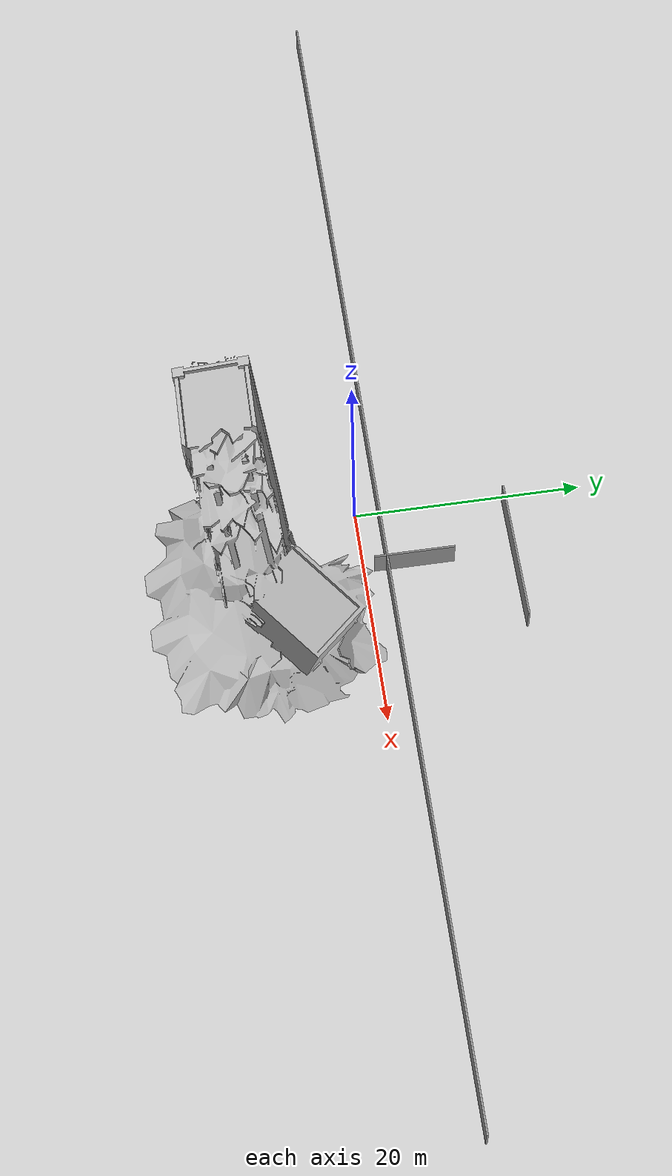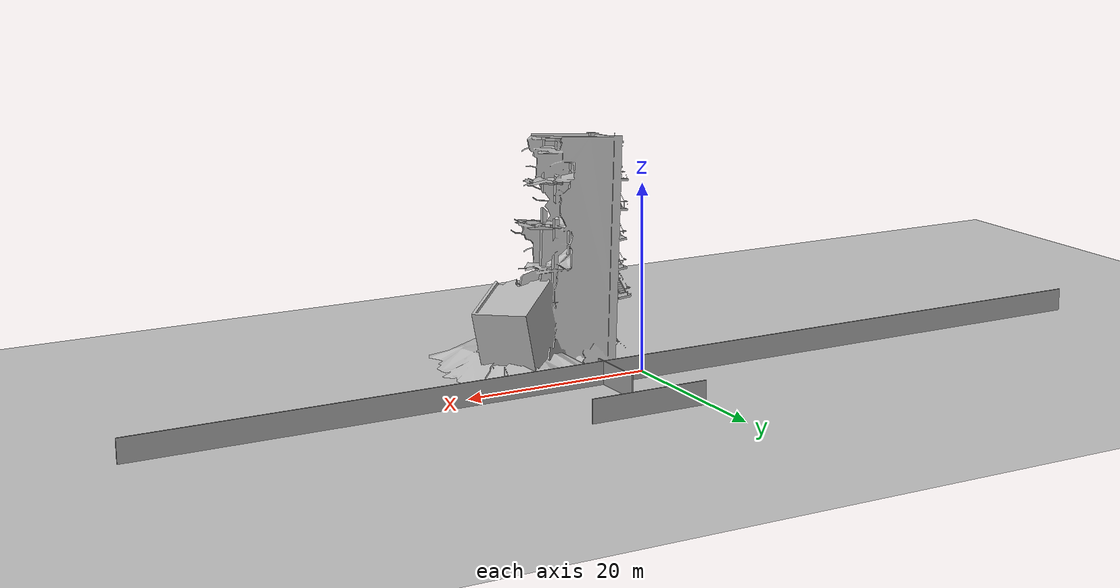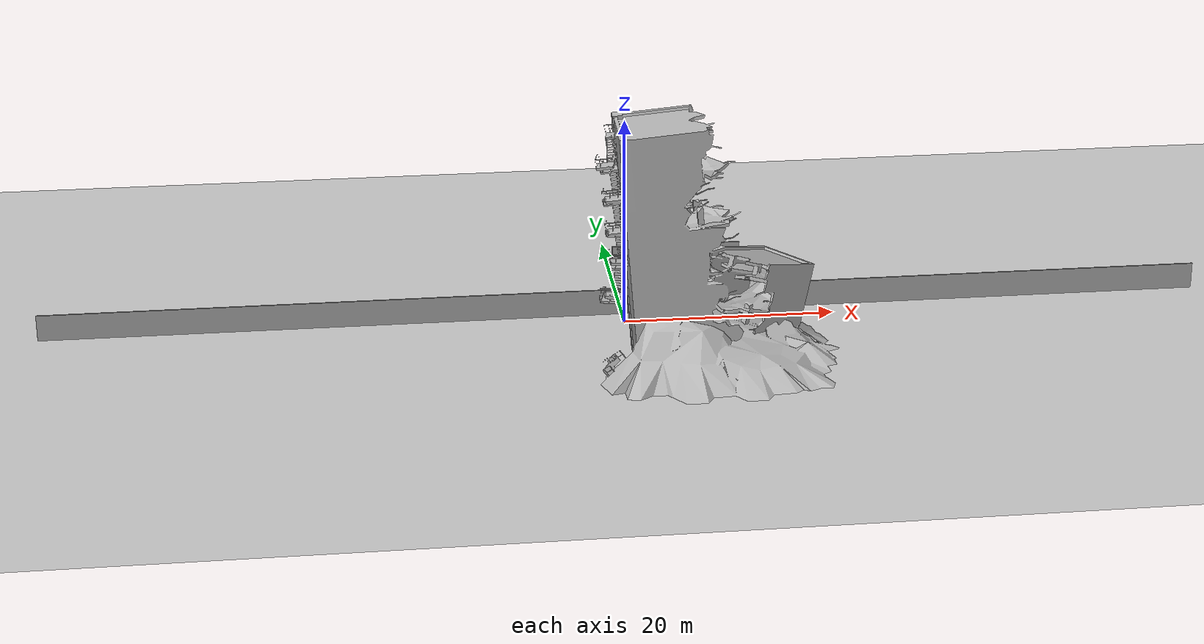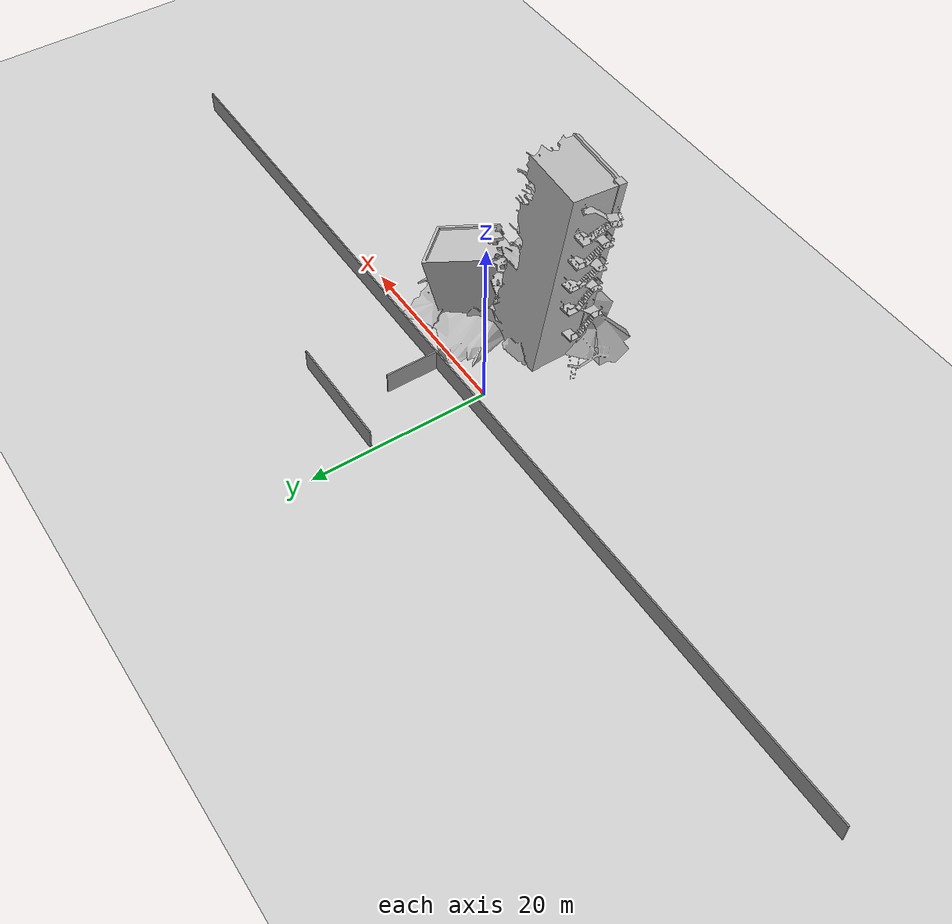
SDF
<sdf version="1.6">
 <world name="default">
  <light name="sun" type="directional">
   <pose>0 0 10 0 -0 0</pose>
   <diffuse>0.8 0.8 0.8 1</diffuse>
   <specular>0.1 0.1 0.1 1</specular>
   <attenuation>
    <range>1000</range>
    <constant>0.9</constant>
    <linear>0.01</linear>
    <quadratic>0.001</quadratic>
   </attenuation>
   <direction>-0.5 0.5 -1</direction>
  </light>
  <model name="ground_plane">
   <static>1</static>
   <link name="link">
    <collision name="collision">
     <geometry><plane><normal>0 0 1</normal><size>100 100</size></plane></geometry>
     <surface><friction><ode><mu>100</mu><mu2>50</mu2></ode></friction></surface>
    </collision>
    <visual name="visual">
     <cast_shadows>0</cast_shadows>
     <geometry><plane><normal>0 0 1</normal><size>100 100</size></plane></geometry>
     <material>
      <script><uri>file://media/materials/scripts/gazebo.material</uri><name>Gazebo/Grey</name></script>
     </material>
    </visual>
   </link>
  </model>
  <gravity>0 0 -9.8</gravity>
  <magnetic_field>6e-06 2.3e-05 -4.2e-05</magnetic_field>
  <atmosphere type="adiabatic"/>
  <physics name="default_physics" default="0" type="ode">
   <max_step_size>0.001</max_step_size>
   <real_time_factor>1</real_time_factor>
   <real_time_update_rate>1000</real_time_update_rate>
  </physics>
  <scene><ambient>0.4 0.4 0.4 1</ambient><background>0.7 0.7 0.7 1</background><shadows>1</shadows></scene>
  <spherical_coordinates>
   <surface_model>EARTH_WGS84</surface_model>
   <latitude_deg>0</latitude_deg>
   <longitude_deg>0</longitude_deg>
   <elevation>0</elevation>
   <heading_deg>0</heading_deg>
  </spherical_coordinates>
  <model name="collapsed_industrial">
   <static>1</static>
   <link name="link">
    <collision name="collision">
     <geometry><mesh><uri>model://collapsed_industrial/meshes/collapsed_industrial.dae</uri></mesh></geometry>
    </collision>
    <visual name="visual">
     <geometry><mesh><uri>model://collapsed_industrial/meshes/collapsed_industrial.dae</uri></mesh></geometry>
    </visual>
   </link>
   <pose>6.63408 -10.0051 0 0 -0 0</pose>
  </model>
  <model name="longwall">
   <pose>0.622815 2.05868 0 0 -0 0</pose>
   <link name="Wall_0">
    <collision name="Wall_0_Collision">
     <geometry><box><size>110.75 0.15 2.5</size></box></geometry>
     <pose>0 0 1.25 0 -0 0</pose>
    </collision>
    <visual name="Wall_0_Visual">
     <pose>0 0 1.25 0 -0 0</pose>
     <geometry><box><size>110.75 0.15 2.5</size></box></geometry>
     <material>
      <script><uri>file://media/materials/scripts/gazebo.material</uri><name>Gazebo/Grey</name></script>
      <ambient>1 1 1 1</ambient>
     </material>
     <meta><layer>0</layer></meta>
    </visual>
    <pose>2e-06 0 0 0 -0 0</pose>
   </link>
   <static>1</static>
  </model>
  <model name="walluse">
   <pose>6.6658 13.1164 0 0 -0 0</pose>
   <link name="Wall_0">
    <collision name="Wall_0_Collision">
     <geometry><box><size>12.75 0.15 2.5</size></box></geometry>
     <pose>0 0 1.25 0 -0 0</pose>
    </collision>
    <visual name="Wall_0_Visual">
     <pose>0 0 1.25 0 -0 0</pose>
     <geometry><box><size>12.75 0.15 2.5</size></box></geometry>
     <material>
      <script><uri>file://media/materials/scripts/gazebo.material</uri><name>Gazebo/Grey</name></script>
      <ambient>1 1 1 1</ambient>
     </material>
     <meta><layer>0</layer></meta>
    </visual>
   </link>
   <static>1</static>
  </model>
  <model name="wallyese">
   <pose>5.68363 4.45064 0 0 -0 0</pose>
   <link name="Wall_2">
    <collision name="Wall_2_Collision">
     <geometry><box><size>7 0.15 2.5</size></box></geometry>
     <pose>0 0 1.25 0 -0 0</pose>
    </collision>
    <visual name="Wall_2_Visual">
     <pose>0 0 1.25 0 -0 0</pose>
     <geometry><box><size>7 0.15 2.5</size></box></geometry>
     <material>
      <script><uri>file://media/materials/scripts/gazebo.material</uri><name>Gazebo/Grey</name></script>
      <ambient>1 1 1 1</ambient>
     </material>
     <meta><layer>0</layer></meta>
    </visual>
    <pose>0 0 0 0 -0 -1.5708</pose>
   </link>
   <static>1</static>
  </model>
 </world>
</sdf>
